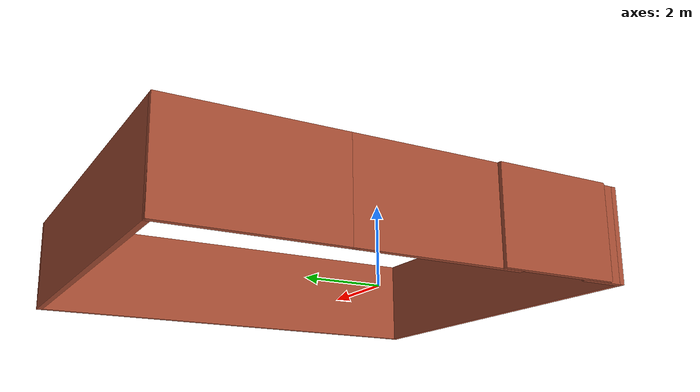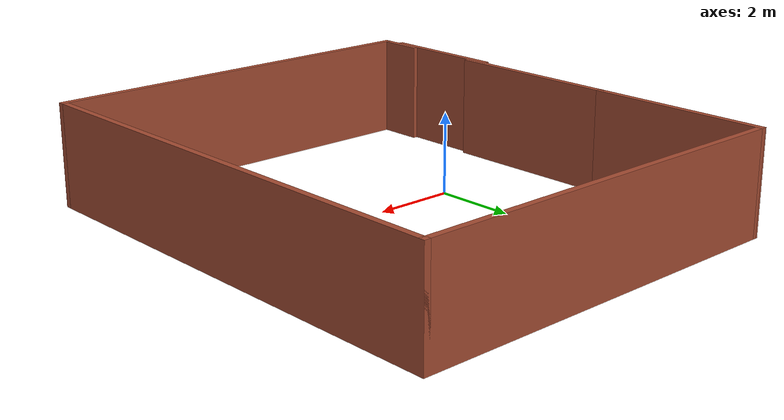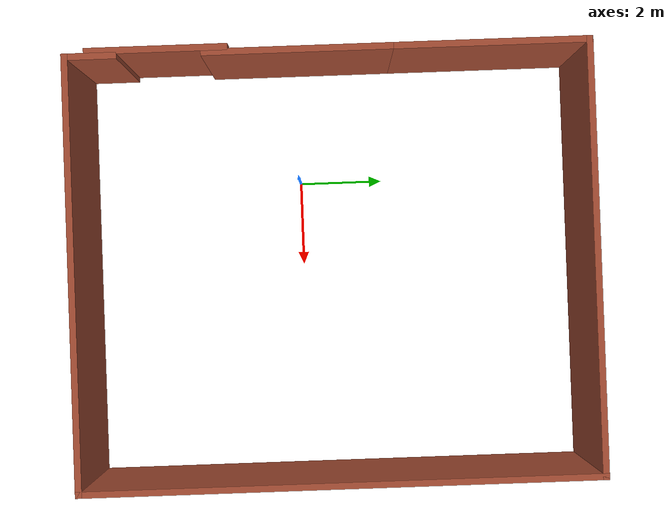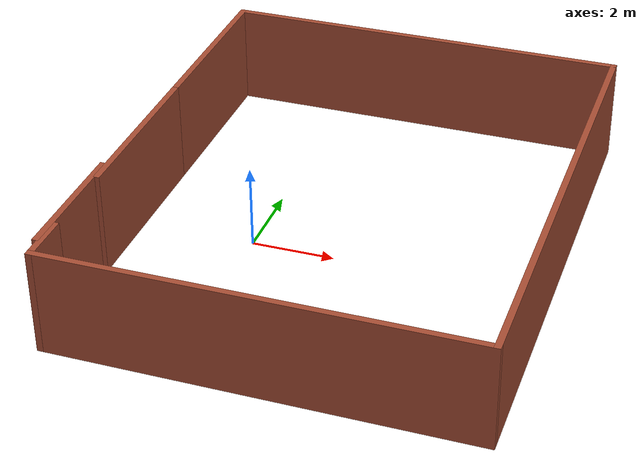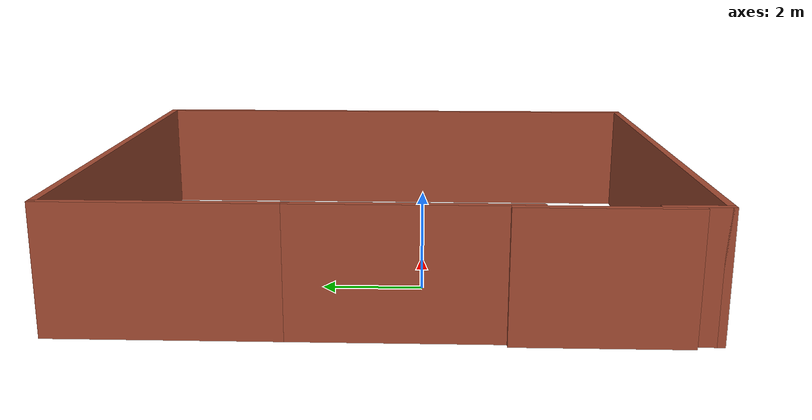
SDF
<?xml version='1.0'?>
<sdf version='1.7'>
  <model name='Building'>
    <pose>2.07069 0.765516 0 0 -0 0</pose>
    <link name='Wall_0'>
      <collision name='Wall_0_Collision'>
        <geometry>
          <box>
            <size>3.25 0.15 2.5</size>
          </box>
        </geometry>
        <pose>0 0 1.25 0 -0 0</pose>
      </collision>
      <visual name='Wall_0_Visual'>
        <pose>0 0 1.25 0 -0 0</pose>
        <geometry>
          <box>
            <size>3.25 0.15 2.5</size>
          </box>
        </geometry>
        <material>
          <script>
            <uri>file://media/materials/scripts/gazebo.material</uri>
            <name>Gazebo/Bricks</name>
          </script>
          <ambient>1 1 1 1</ambient>
        </material>
        <meta>
          <layer>0</layer>
        </meta>
      </visual>
      <pose>-4.98069 -3.86552 0 0 -0 1.5708</pose>
    </link>
    <link name='Wall_2'>
      <collision name='Wall_2_Collision'>
        <geometry>
          <box>
            <size>4.5 0.15 2.5</size>
          </box>
        </geometry>
        <pose>0 0 1.25 0 -0 0</pose>
      </collision>
      <visual name='Wall_2_Visual'>
        <pose>0 0 1.25 0 -0 0</pose>
        <geometry>
          <box>
            <size>4.5 0.15 2.5</size>
          </box>
        </geometry>
        <material>
          <script>
            <uri>file://media/materials/scripts/gazebo.material</uri>
            <name>Gazebo/Bricks</name>
          </script>
          <ambient>1 1 1 1</ambient>
        </material>
        <meta>
          <layer>0</layer>
        </meta>
      </visual>
      <pose>-4.86931 -0.6 0 0 -0 1.5708</pose>
    </link>
    <link name='Wall_3'>
      <collision name='Wall_3_Collision'>
        <geometry>
          <box>
            <size>4.5 0.15 2.5</size>
          </box>
        </geometry>
        <pose>0 0 1.25 0 -0 0</pose>
      </collision>
      <visual name='Wall_3_Visual'>
        <pose>0 0 1.25 0 -0 0</pose>
        <geometry>
          <box>
            <size>4.5 0.15 2.5</size>
          </box>
        </geometry>
        <material>
          <script>
            <uri>file://media/materials/scripts/gazebo.material</uri>
            <name>Gazebo/Bricks</name>
          </script>
          <ambient>1 1 1 1</ambient>
        </material>
        <meta>
          <layer>0</layer>
        </meta>
      </visual>
      <pose>-4.86931 3.75 0 0 -0 1.5708</pose>
    </link>
    <link name='Wall_4'>
      <collision name='Wall_4_Collision'>
        <geometry>
          <box>
            <size>10 0.15 2.5</size>
          </box>
        </geometry>
        <pose>0 0 1.25 0 -0 0</pose>
      </collision>
      <visual name='Wall_4_Visual'>
        <pose>0 0 1.25 0 -0 0</pose>
        <geometry>
          <box>
            <size>10 0.15 2.5</size>
          </box>
        </geometry>
        <material>
          <script>
            <uri>file://media/materials/scripts/gazebo.material</uri>
            <name>Gazebo/Bricks</name>
          </script>
          <ambient>1 1 1 1</ambient>
        </material>
        <meta>
          <layer>0</layer>
        </meta>
      </visual>
      <pose>0.055691 5.925 0 0 -0 0</pose>
    </link>
    <link name='Wall_5'>
      <collision name='Wall_5_Collision'>
        <geometry>
          <box>
            <size>12 0.15 2.5</size>
          </box>
        </geometry>
        <pose>0 0 1.25 0 -0 0</pose>
      </collision>
      <visual name='Wall_5_Visual'>
        <pose>0 0 1.25 0 -0 0</pose>
        <geometry>
          <box>
            <size>12 0.15 2.5</size>
          </box>
        </geometry>
        <material>
          <script>
            <uri>file://media/materials/scripts/gazebo.material</uri>
            <name>Gazebo/Bricks</name>
          </script>
          <ambient>1 1 1 1</ambient>
        </material>
        <meta>
          <layer>0</layer>
        </meta>
      </visual>
      <pose>4.98069 -0 0 0 -0 -1.5708</pose>
    </link>
    <link name='Wall_6'>
      <collision name='Wall_6_Collision'>
        <geometry>
          <box>
            <size>10 0.15 2.5</size>
          </box>
        </geometry>
        <pose>0 0 1.25 0 -0 0</pose>
      </collision>
      <visual name='Wall_6_Visual'>
        <pose>0 0 1.25 0 -0 0</pose>
        <geometry>
          <box>
            <size>10 0.15 2.5</size>
          </box>
        </geometry>
        <material>
          <script>
            <uri>file://media/materials/scripts/gazebo.material</uri>
            <name>Gazebo/Bricks</name>
          </script>
          <ambient>1 1 1 1</ambient>
        </material>
        <meta>
          <layer>0</layer>
        </meta>
      </visual>
      <pose>0.055691 -5.925 0 0 -0 3.14159</pose>
    </link>
    <link name='Wall_7'>
      <collision name='Wall_7_Collision'>
        <geometry>
          <box>
            <size>1.25 0.15 2.5</size>
          </box>
        </geometry>
        <pose>0 0 1.25 0 -0 0</pose>
      </collision>
      <visual name='Wall_7_Visual'>
        <pose>0 0 1.25 0 -0 0</pose>
        <geometry>
          <box>
            <size>1.25 0.15 2.5</size>
          </box>
        </geometry>
        <material>
          <script>
            <uri>file://media/materials/scripts/gazebo.material</uri>
            <name>Gazebo/Bricks</name>
          </script>
          <ambient>1 1 1 1</ambient>
        </material>
        <meta>
          <layer>0</layer>
        </meta>
      </visual>
      <pose>-4.86931 -5.375 0 0 -0 1.5708</pose>
    </link>
    <static>1</static>
  </model>
</sdf>
